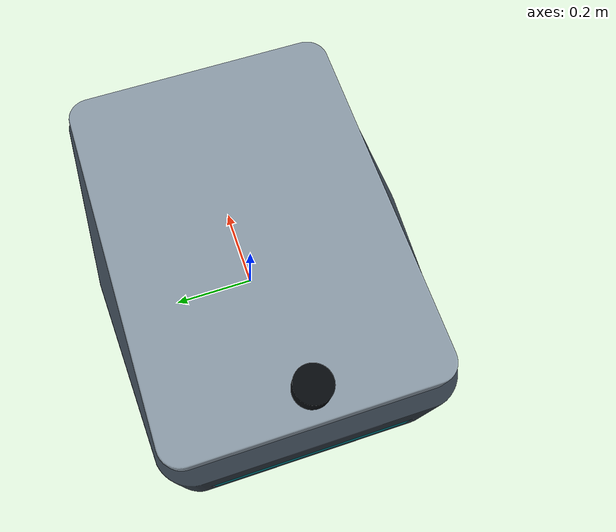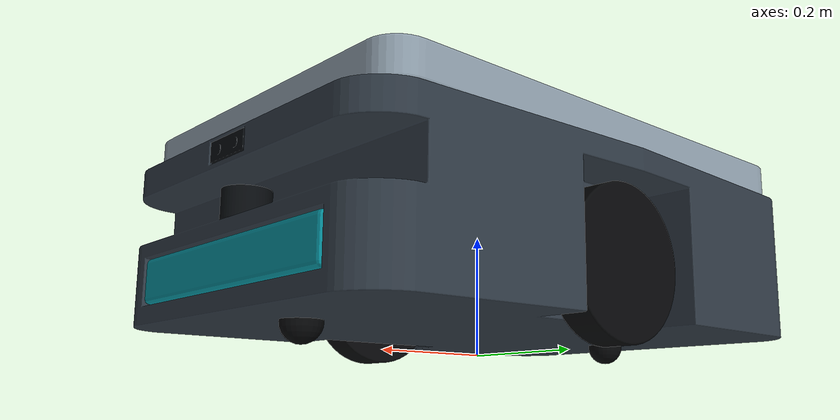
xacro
<?xml version="1.0"?>
<robot name="warehouse_amr" xmlns:xacro="http://www.ros.org/wiki/xacro">
  <xacro:arg name="gazebo" default="false"/>
  <xacro:arg name="debug_imu" default="false"/>
  <!-- full: LiDARs, IMU and RGB-D camera; lidar: LiDARs and IMU only (gazebo_validation mode) -->
  <xacro:arg name="sensors" default="full"/>
  <xacro:arg name="controllers_file" default="$(find amr_description)/config/controllers.yaml"/>
  <xacro:include filename="dimensions.xacro"/>
  <xacro:include filename="inertials.xacro"/>
  <xacro:include filename="collision/chassis_collision.xacro"/>
  <xacro:include filename="collision/platform_collision.xacro"/>
  <xacro:include filename="collision/wheels_collision.xacro"/>
  <xacro:include filename="components/chassis.xacro"/>
  <xacro:include filename="components/platform.xacro"/>
  <xacro:include filename="components/wheels.xacro"/>
  <xacro:include filename="components/casters.xacro"/>
  <xacro:include filename="sensors/lidar.xacro"/>
  <xacro:include filename="sensors/top_lidar.xacro"/>
  <xacro:include filename="sensors/imu.xacro"/>
  <xacro:include filename="sensors/camera.xacro"/>
  <xacro:include filename="gazebo/gazebo.xacro"/>
  <xacro:include filename="gazebo/sensors_gazebo.xacro"/>
  <xacro:include filename="gazebo/ros2_control.xacro"/>
  <material name="graphite"><color rgba="${chassis_rgba}"/></material>
  <material name="metal"><color rgba="${platform_rgba}"/></material>
  <material name="rubber"><color rgba="${rubber_rgba}"/></material>
  <material name="sensor"><color rgba="${sensor_rgba}"/></material>
  <material name="accent"><color rgba="${accent_rgba}"/></material>
  <!-- Kinematic root at floor height; physical inertia lives in chassis_link. -->
  <link name="base_link"/>
  <xacro:chassis/><xacro:platform/><xacro:wheels/><xacro:casters/>
  <xacro:lidar/><xacro:top_lidar/><xacro:imu debug="$(arg debug_imu)"/><xacro:camera/>
  <xacro:if value="$(arg gazebo)">
    <xacro:gazebo_properties/><xacro:gazebo_sensors/>
    <xacro:amr_control controllers_file="$(arg controllers_file)"/>
  </xacro:if>
</robot>

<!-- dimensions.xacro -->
<!-- Generated by scripts/amr_parameters.py; edit amr_dimensions.json. -->
<robot xmlns:xacro="http://www.ros.org/wiki/xacro">
  <xacro:property name="schema_version" value="1"/>
  <xacro:property name="chassis_length" value="0.95"/>
  <xacro:property name="chassis_width" value="0.7"/>
  <xacro:property name="chassis_height" value="0.25"/>
  <xacro:property name="ground_clearance" value="0.035"/>
  <xacro:property name="chassis_corner_radius" value="0.065"/>
  <xacro:property name="chassis_end_taper" value="0.035"/>
  <xacro:property name="chassis_bevel" value="0.008"/>
  <xacro:property name="platform_length" value="0.88"/>
  <xacro:property name="platform_width" value="0.64"/>
  <xacro:property name="platform_thickness" value="0.055"/>
  <xacro:property name="platform_gap" value="0.004"/>
  <xacro:property name="platform_corner_radius" value="0.05"/>
  <xacro:property name="wheel_radius" value="0.12"/>
  <xacro:property name="wheel_width" value="0.055"/>
  <xacro:property name="track_width" value="0.58"/>
  <xacro:property name="odometry_wheel_separation" value="0.5258"/>
  <xacro:property name="wheel_arch_gap" value="0.009"/>
  <xacro:property name="wheel_bevel" value="0.003"/>
  <xacro:property name="caster_radius" value="0.032"/>
  <xacro:property name="caster_end_inset" value="0.13"/>
  <xacro:property name="bumper_length" value="0.025"/>
  <xacro:property name="bumper_width" value="0.48"/>
  <xacro:property name="bumper_height" value="0.07"/>
  <xacro:property name="bumper_bottom_gap" value="0.032"/>
  <xacro:property name="panel_gap" value="0.002"/>
  <xacro:property name="lidar_radius" value="0.035"/>
  <xacro:property name="lidar_height" value="0.045"/>
  <xacro:property name="lidar_scan_gap" value="0.006"/>
  <xacro:property name="sensor_bay_depth" value="0.082"/>
  <xacro:property name="sensor_bay_height" value="0.076"/>
  <xacro:property name="sensor_bay_z_fraction" value="0.66"/>
  <xacro:property name="camera_length" value="0.034"/>
  <xacro:property name="camera_width" value="0.092"/>
  <xacro:property name="camera_height" value="0.03"/>
  <xacro:property name="camera_top_margin" value="0.006"/>
  <xacro:property name="camera_lens_gap" value="0.002"/>
  <xacro:property name="imu_size" value="0.025"/>
  <xacro:property name="chassis_mass" value="65"/>
  <xacro:property name="chassis_com_height" value="0.105"/>
  <xacro:property name="platform_mass" value="12"/>
  <xacro:property name="wheel_mass" value="2.5"/>
  <xacro:property name="caster_mass" value="0.3"/>
  <xacro:property name="bumper_mass" value="0.6"/>
  <xacro:property name="lidar_mass" value="0.35"/>
  <xacro:property name="camera_mass" value="0.25"/>
  <xacro:property name="imu_mass" value="0.05"/>
  <xacro:property name="wheel_max_velocity" value="12"/>
  <xacro:property name="wheel_max_effort" value="35"/>
  <xacro:property name="wheel_damping" value="0.05"/>
  <xacro:property name="drive_friction" value="1"/>
  <xacro:property name="caster_friction" value="0.001"/>
  <xacro:property name="max_linear_velocity" value="0.7"/>
  <xacro:property name="max_angular_velocity" value="1.5"/>
  <xacro:property name="max_linear_acceleration" value="0.5"/>
  <xacro:property name="max_angular_acceleration" value="1.5"/>
  <xacro:property name="controller_rate" value="100"/>
  <xacro:property name="command_timeout" value="0.5"/>
  <xacro:property name="lidar_samples" value="361"/>
  <xacro:property name="lidar_fov_degrees" value="180"/>
  <xacro:property name="lidar_rate" value="15"/>
  <xacro:property name="lidar_min_range" value="0.08"/>
  <xacro:property name="lidar_max_range" value="20"/>
  <xacro:property name="lidar_resolution" value="0.01"/>
  <xacro:property name="top_lidar_rear_inset" value="0.06"/>
  <xacro:property name="top_lidar_mast_radius" value="0.018"/>
  <xacro:property name="top_lidar_clearance" value="0.08"/>
  <xacro:property name="top_lidar_radius" value="0.04"/>
  <xacro:property name="top_lidar_height" value="0.05"/>
  <xacro:property name="top_lidar_mass" value="0.4"/>
  <xacro:property name="top_lidar_mast_mass" value="0.25"/>
  <xacro:property name="top_lidar_samples" value="720"/>
  <xacro:property name="top_lidar_rate" value="10"/>
  <xacro:property name="top_lidar_min_range" value="0.12"/>
  <xacro:property name="top_lidar_max_range" value="20"/>
  <xacro:property name="imu_rate" value="100"/>
  <xacro:property name="camera_rate" value="15"/>
  <xacro:property name="camera_image_width" value="640"/>
  <xacro:property name="camera_image_height" value="480"/>
  <xacro:property name="camera_fov_degrees" value="75"/>
  <xacro:property name="camera_near" value="0.08"/>
  <xacro:property name="camera_far" value="10"/>
  <xacro:property name="mesh_segments" value="48"/>
  <xacro:property name="corner_segments" value="8"/>
  <xacro:property name="bevel_segments" value="3"/>
  <xacro:property name="render_resolution" value="900"/>
  <xacro:property name="render_samples" value="24"/>
  <xacro:property name="chassis_rgba" value="0.18 0.22 0.26 1.0"/>
  <xacro:property name="platform_rgba" value="0.55 0.61 0.66 1.0"/>
  <xacro:property name="rubber_rgba" value="0.018 0.022 0.027 1.0"/>
  <xacro:property name="sensor_rgba" value="0.025 0.038 0.05 1.0"/>
  <xacro:property name="accent_rgba" value="0.02 0.56 0.61 1.0"/>
  <xacro:property name="chassis_z" value="0.16"/>
  <xacro:property name="chassis_top" value="0.285"/>
  <xacro:property name="platform_z" value="0.3165"/>
  <xacro:property name="overall_height" value="0.344"/>
  <xacro:property name="wheel_y" value="0.29"/>
  <xacro:property name="wheel_z" value="0.12"/>
  <xacro:property name="arch_half_length" value="0.129"/>
  <xacro:property name="arch_top" value="0.249"/>
  <xacro:property name="core_half_width" value="0.2535"/>
  <xacro:property name="caster_x" value="0.345"/>
  <xacro:property name="bumper_x" value="0.4625"/>
  <xacro:property name="bumper_z" value="0.102"/>
  <xacro:property name="bay_z" value="0.2"/>
  <xacro:property name="bay_bottom" value="0.162"/>
  <xacro:property name="bay_top" value="0.238"/>
  <xacro:property name="bay_back_x" value="0.393"/>
  <xacro:property name="lidar_x" value="0.44"/>
  <xacro:property name="lidar_z" value="0.1845"/>
  <xacro:property name="laser_z" value="0.213"/>
  <xacro:property name="camera_x" value="0.458"/>
  <xacro:property name="camera_z" value="0.264"/>
  <xacro:property name="lidar_half_fov" value="1.57079632679"/>
  <xacro:property name="top_lidar_x" value="-0.38"/>
  <xacro:property name="top_mast_z" value="0.384"/>
  <xacro:property name="top_lidar_z" value="0.449"/>
  <xacro:property name="top_laser_z" value="0.48"/>
  <xacro:property name="top_lidar_angle_step" value="0.00872664625997"/>
  <xacro:property name="camera_fov" value="1.308996939"/>
  <xacro:property name="core_length" value="0.868"/>
  <xacro:property name="core_x" value="-0.041"/>
  <xacro:property name="end_collision_width" value="0.57"/>
  <xacro:property name="front_collision_length" value="0.264"/>
  <xacro:property name="front_collision_x" value="0.261"/>
  <xacro:property name="rear_collision_length" value="0.338"/>
  <xacro:property name="rear_collision_x" value="-0.298"/>
</robot>

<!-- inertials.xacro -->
<robot xmlns:xacro="http://www.ros.org/wiki/xacro">
  <xacro:macro name="box_inertial" params="mass x y z xyz:='0 0 0'">
    <inertial>
      <origin xyz="${xyz}"/>
      <mass value="${mass}"/>
      <inertia ixx="${mass*(y*y+z*z)/12}" ixy="0" ixz="0"
               iyy="${mass*(x*x+z*z)/12}" iyz="0" izz="${mass*(x*x+y*y)/12}"/>
    </inertial>
  </xacro:macro>
  <xacro:macro name="cylinder_inertial" params="mass radius length rpy:='0 0 0'">
    <inertial>
      <origin rpy="${rpy}"/>
      <mass value="${mass}"/>
      <inertia ixx="${mass*(3*radius*radius+length*length)/12}" ixy="0" ixz="0"
               iyy="${mass*(3*radius*radius+length*length)/12}" iyz="0" izz="${mass*radius*radius/2}"/>
    </inertial>
  </xacro:macro>
  <xacro:macro name="sphere_inertial" params="mass radius">
    <inertial><mass value="${mass}"/>
      <inertia ixx="${2*mass*radius*radius/5}" ixy="0" ixz="0"
               iyy="${2*mass*radius*radius/5}" iyz="0" izz="${2*mass*radius*radius/5}"/>
    </inertial>
  </xacro:macro>
  <xacro:macro name="mesh_visual" params="stem material">
    <visual><geometry><mesh filename="package://amr_description/meshes/visual/${stem}.stl" scale="1 1 1"/></geometry>
      <material name="${material}"/>
    </visual>
  </xacro:macro>
  <xacro:macro name="fixed_joint" params="name parent child xyz:='0 0 0' rpy:='0 0 0'">
    <joint name="${name}" type="fixed"><parent link="${parent}"/><child link="${child}"/>
      <origin xyz="${xyz}" rpy="${rpy}"/>
    </joint>
  </xacro:macro>
</robot>

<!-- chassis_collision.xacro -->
<robot xmlns:xacro="http://www.ros.org/wiki/xacro">
  <xacro:macro name="chassis_collision" params="">
    <!-- Three boxes leave the wheel pockets and front scanning bay unobstructed. -->
    <collision name="core"><origin xyz="${core_x} 0 0"/>
      <geometry><box size="${core_length} ${2*core_half_width} ${chassis_height}"/></geometry>
    </collision>
    <collision name="front_shoulders"><origin xyz="${front_collision_x} 0 0"/>
      <geometry><box size="${front_collision_length} ${end_collision_width} ${chassis_height}"/></geometry>
    </collision>
    <collision name="rear_shoulders"><origin xyz="${rear_collision_x} 0 0"/>
      <geometry><box size="${rear_collision_length} ${end_collision_width} ${chassis_height}"/></geometry>
    </collision>
  </xacro:macro>
</robot>

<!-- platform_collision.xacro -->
<robot xmlns:xacro="http://www.ros.org/wiki/xacro">
  <xacro:macro name="platform_collision" params="">
    <collision><geometry><box size="${platform_length} ${platform_width} ${platform_thickness}"/></geometry></collision>
  </xacro:macro>
</robot>

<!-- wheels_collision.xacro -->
<robot xmlns:xacro="http://www.ros.org/wiki/xacro">
  <xacro:macro name="wheel_collision" params="">
    <collision><origin rpy="${pi/2} 0 0"/>
      <geometry><cylinder radius="${wheel_radius}" length="${wheel_width}"/></geometry>
    </collision>
  </xacro:macro>
</robot>

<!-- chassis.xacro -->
<robot xmlns:xacro="http://www.ros.org/wiki/xacro">
  <xacro:macro name="bumper" params="side sign">
    <link name="bumper_${side}_link">
      <xacro:mesh_visual stem="bumper_${side}" material="accent"/>
      <collision><geometry><box size="${bumper_length} ${bumper_width} ${bumper_height}"/></geometry></collision>
      <xacro:box_inertial mass="${bumper_mass}" x="${bumper_length}" y="${bumper_width}" z="${bumper_height}"/>
    </link>
    <xacro:fixed_joint name="bumper_${side}_joint" parent="chassis_link" child="bumper_${side}_link"
                       xyz="${sign*bumper_x} 0 ${bumper_z-chassis_z}"/>
  </xacro:macro>
  <xacro:macro name="chassis" params="">
    <link name="chassis_link">
      <xacro:mesh_visual stem="chassis" material="graphite"/>
      <xacro:chassis_collision/>
      <!-- Prototype battery-dominated COM; inertia approximated by a uniform box about this COM. -->
      <xacro:box_inertial mass="${chassis_mass}" x="${chassis_length}" y="${chassis_width}" z="${chassis_height}"
                          xyz="0 0 ${chassis_com_height-chassis_z}"/>
    </link>
    <xacro:fixed_joint name="base_to_chassis" parent="base_link" child="chassis_link" xyz="0 0 ${chassis_z}"/>
    <xacro:bumper side="front" sign="1"/>
    <xacro:bumper side="rear" sign="-1"/>
  </xacro:macro>
</robot>

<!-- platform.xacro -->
<robot xmlns:xacro="http://www.ros.org/wiki/xacro">
  <xacro:macro name="platform" params="">
    <link name="platform_link">
      <xacro:mesh_visual stem="platform" material="metal"/>
      <xacro:platform_collision/>
      <xacro:box_inertial mass="${platform_mass}" x="${platform_length}" y="${platform_width}" z="${platform_thickness}"/>
    </link>
    <xacro:fixed_joint name="platform_joint" parent="base_link" child="platform_link" xyz="0 0 ${platform_z}"/>
  </xacro:macro>
</robot>

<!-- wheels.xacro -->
<robot xmlns:xacro="http://www.ros.org/wiki/xacro">
  <xacro:macro name="drive_wheel" params="side sign">
    <link name="${side}_wheel_link">
      <!-- The mesh already has its axle along Y; only cylinder primitives need a rotation. -->
      <xacro:mesh_visual stem="wheel" material="rubber"/>
      <xacro:wheel_collision/>
      <xacro:cylinder_inertial mass="${wheel_mass}" radius="${wheel_radius}" length="${wheel_width}" rpy="${pi/2} 0 0"/>
    </link>
    <joint name="${side}_wheel_joint" type="continuous">
      <parent link="chassis_link"/><child link="${side}_wheel_link"/>
      <origin xyz="0 ${sign*wheel_y} ${wheel_z-chassis_z}"/>
      <axis xyz="0 1 0"/>
      <limit effort="${wheel_max_effort}" velocity="${wheel_max_velocity}"/>
      <dynamics damping="${wheel_damping}" friction="0"/>
    </joint>
  </xacro:macro>
  <xacro:macro name="wheels" params=""><xacro:drive_wheel side="left" sign="1"/><xacro:drive_wheel side="right" sign="-1"/></xacro:macro>
</robot>

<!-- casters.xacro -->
<robot xmlns:xacro="http://www.ros.org/wiki/xacro">
  <xacro:macro name="caster" params="side sign">
    <link name="${side}_caster_link">
      <xacro:mesh_visual stem="caster" material="rubber"/>
      <collision><geometry><sphere radius="${caster_radius}"/></geometry></collision>
      <xacro:sphere_inertial mass="${caster_mass}" radius="${caster_radius}"/>
    </link>
    <!-- Fixed low-friction ball contact approximates a passive omnidirectional support. -->
    <xacro:fixed_joint name="${side}_caster_joint" parent="chassis_link" child="${side}_caster_link"
                       xyz="${sign*caster_x} 0 ${caster_radius-chassis_z}"/>
  </xacro:macro>
  <xacro:macro name="casters" params=""><xacro:caster side="front" sign="1"/><xacro:caster side="rear" sign="-1"/></xacro:macro>
</robot>

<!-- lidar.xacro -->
<robot xmlns:xacro="http://www.ros.org/wiki/xacro">
  <xacro:macro name="lidar" params="">
    <link name="lidar_link">
      <xacro:mesh_visual stem="lidar_housing" material="sensor"/>
      <collision><geometry><cylinder radius="${lidar_radius}" length="${lidar_height}"/></geometry></collision>
      <xacro:cylinder_inertial mass="${lidar_mass}" radius="${lidar_radius}" length="${lidar_height}"/>
    </link>
    <xacro:fixed_joint name="lidar_joint" parent="chassis_link" child="lidar_link" xyz="${lidar_x} 0 ${lidar_z-chassis_z}"/>
    <link name="laser_frame"/>
    <xacro:fixed_joint name="laser_frame_joint" parent="lidar_link" child="laser_frame" xyz="0 0 ${laser_z-lidar_z}"/>
  </xacro:macro>
</robot>

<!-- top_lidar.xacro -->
<robot xmlns:xacro="http://www.ros.org/wiki/xacro">
  <!-- Elevated 360-degree safety/perception scanner on a mast at the platform rear edge.
       Its scan plane lies above every robot part; payload must stay below it. -->
  <xacro:macro name="top_lidar" params="">
    <link name="top_lidar_mast">
      <xacro:mesh_visual stem="top_lidar_mast" material="metal"/>
      <collision><geometry><cylinder radius="${top_lidar_mast_radius}" length="${top_lidar_clearance}"/></geometry></collision>
      <xacro:cylinder_inertial mass="${top_lidar_mast_mass}" radius="${top_lidar_mast_radius}" length="${top_lidar_clearance}"/>
    </link>
    <xacro:fixed_joint name="top_lidar_mast_joint" parent="platform_link" child="top_lidar_mast" xyz="${top_lidar_x} 0 ${top_mast_z-platform_z}"/>
    <link name="top_lidar_link">
      <xacro:mesh_visual stem="top_lidar_housing" material="sensor"/>
      <collision><geometry><cylinder radius="${top_lidar_radius}" length="${top_lidar_height}"/></geometry></collision>
      <xacro:cylinder_inertial mass="${top_lidar_mass}" radius="${top_lidar_radius}" length="${top_lidar_height}"/>
    </link>
    <xacro:fixed_joint name="top_lidar_joint" parent="top_lidar_mast" child="top_lidar_link" xyz="0 0 ${top_lidar_z-top_mast_z}"/>
    <link name="top_laser_frame"/>
    <xacro:fixed_joint name="top_laser_frame_joint" parent="top_lidar_link" child="top_laser_frame" xyz="0 0 ${top_laser_z-top_lidar_z}"/>
  </xacro:macro>
</robot>

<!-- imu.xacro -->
<robot xmlns:xacro="http://www.ros.org/wiki/xacro">
  <xacro:macro name="imu" params="debug">
    <link name="imu_link">
      <xacro:box_inertial mass="${imu_mass}" x="${imu_size}" y="${imu_size}" z="${imu_size}"/>
      <xacro:if value="${debug}"><visual><geometry><box size="${imu_size} ${imu_size} ${imu_size}"/></geometry><material name="accent"/></visual></xacro:if>
    </link>
    <xacro:fixed_joint name="imu_joint" parent="chassis_link" child="imu_link" xyz="0 0 ${chassis_com_height-chassis_z}"/>
  </xacro:macro>
</robot>

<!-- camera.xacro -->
<robot xmlns:xacro="http://www.ros.org/wiki/xacro">
  <xacro:macro name="camera" params="">
    <link name="camera_link">
      <xacro:mesh_visual stem="camera_housing" material="sensor"/>
      <collision><geometry><box size="${camera_length} ${camera_width} ${camera_height}"/></geometry></collision>
      <xacro:box_inertial mass="${camera_mass}" x="${camera_length}" y="${camera_width}" z="${camera_height}"/>
    </link>
    <xacro:fixed_joint name="camera_joint" parent="chassis_link" child="camera_link" xyz="${camera_x} 0 ${camera_z-chassis_z}"/>
    <link name="camera_optical_frame"/>
    <!-- Harmonic PointCloudPacked uses +X forward at the lens, unlike image coordinates. -->
    <link name="camera_depth_frame"/>
    <xacro:fixed_joint name="camera_depth_joint" parent="camera_link" child="camera_depth_frame"
                       xyz="${camera_length/2+camera_lens_gap} 0 0"/>
    <!-- REP-103 optical frame: X right, Y down, Z forward. -->
    <xacro:fixed_joint name="camera_optical_joint" parent="camera_link" child="camera_optical_frame"
                       xyz="${camera_length/2+camera_lens_gap} 0 0" rpy="${-pi/2} 0 ${-pi/2}"/>
  </xacro:macro>
</robot>
